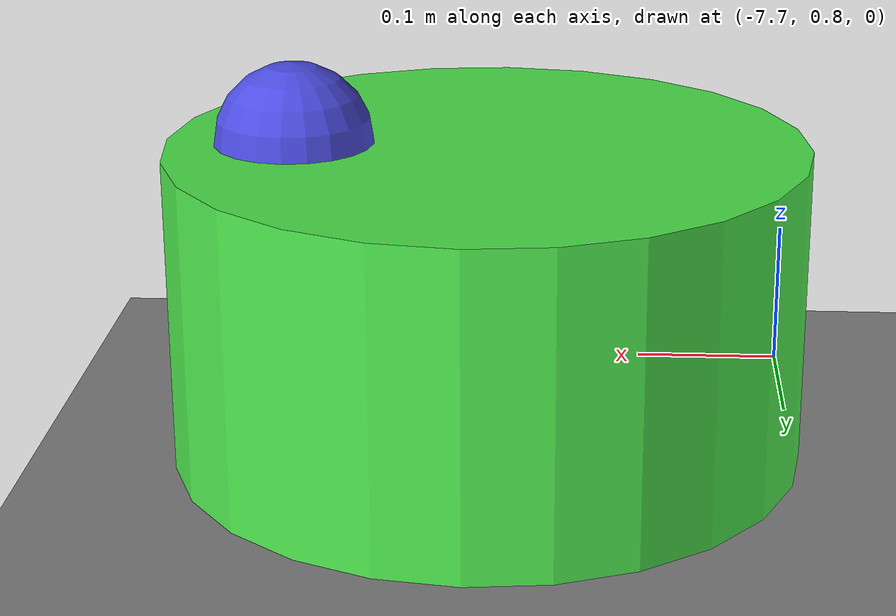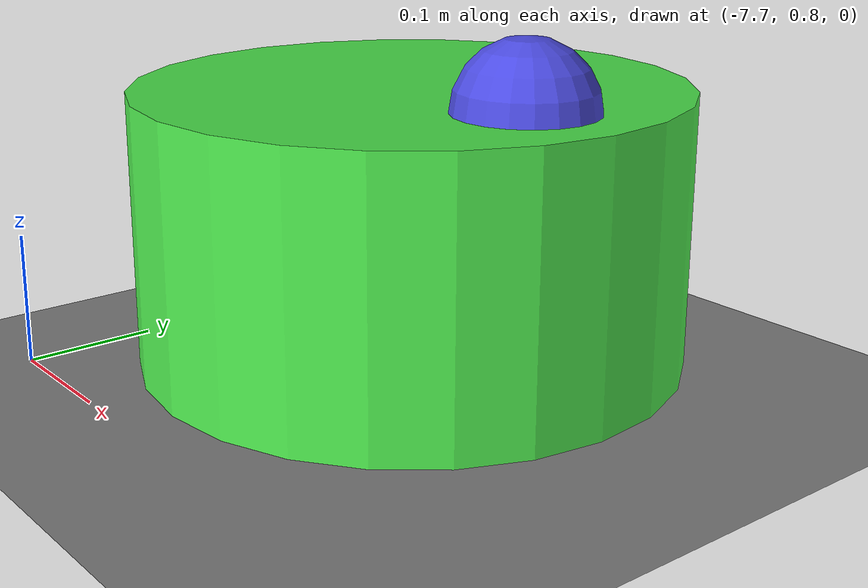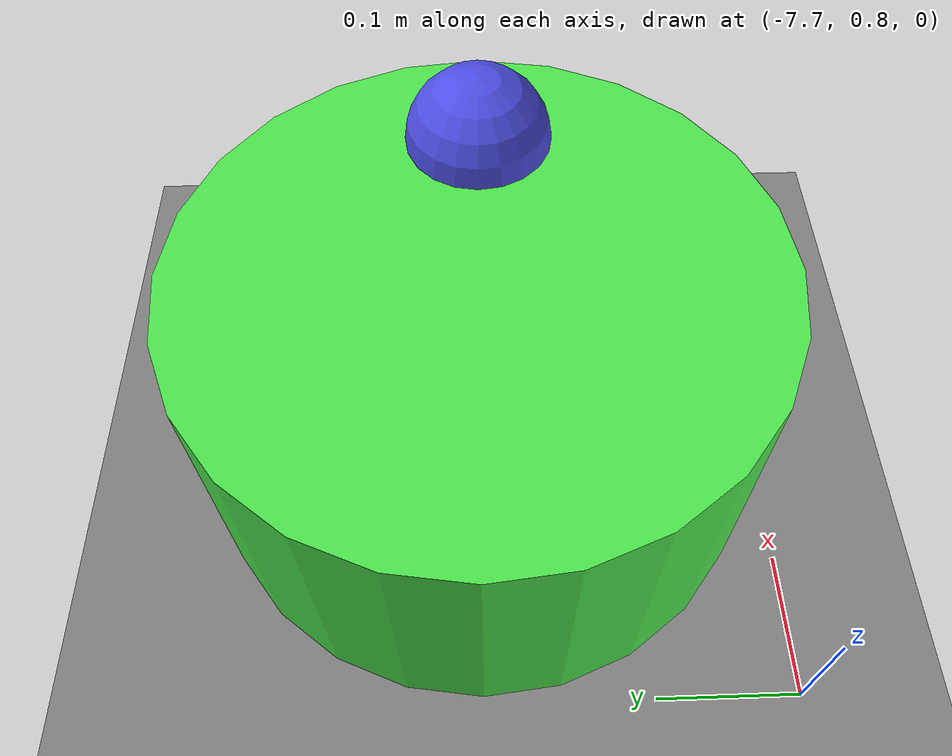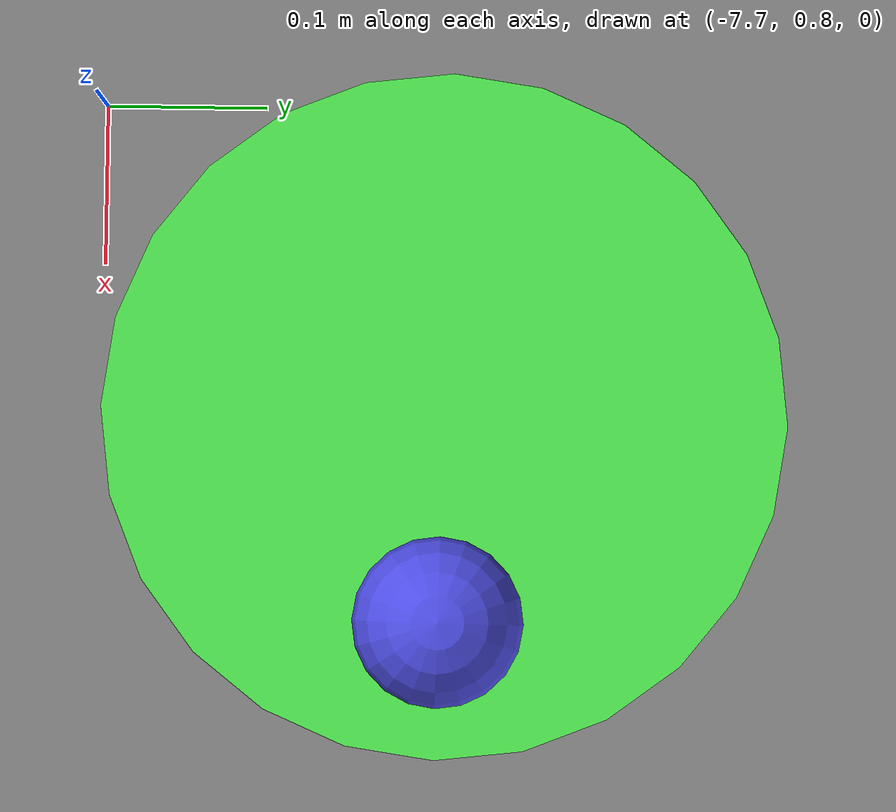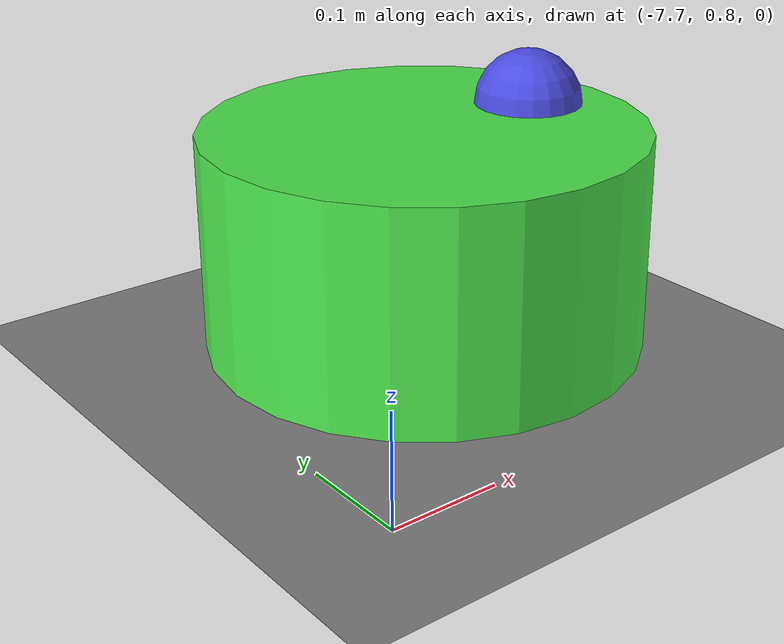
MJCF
<mujoco>
<default>
	<geom friction="0.1 0.005 0.0001"/>
</default>
<visual>
	 <global offwidth="1920" offheight="1080" />
</visual>
<worldbody>
<light name="uplight_0" diffuse="0.4 0.4 0.4" pos="0 0 20" dir="0 0 -1" />
<light name="uplight_1" diffuse="0.4 0.4 0.4" pos="10 10 20" dir="0 0 -1" />
<light name="uplight_2" diffuse="0.4 0.4 0.4" pos="-10 -10 20" dir="0 0 -1" />
<light name="uplight_3" diffuse="0.4 0.4 0.4" pos="10 -10 20" dir="0 0 -1" />
<light name="uplight_4" diffuse="0.4 0.4 0.4" pos="-10 10 20" dir="0 0 -1" />
<geom contype="2" friction="1 0.005 0.0001" pos="0 0 0" euler="0 0 0" type="plane" size="20 20 0.01" rgba="0.5 0.5 0.5 1"/>
<camera mode="fixed" pos="0 0 15" ></camera>

<body name="robot_0" pos="-7.5 1.014331294648699 0" euler="0 0 358.9822155374681">
    <!-- shell radius 17cm, wheel radius 4cm, distance between wheels 28cm -->
    <freejoint name="robot_0"></freejoint>
    <site name="front-flag_0" rgba="0.3 0.3 0.9 1" pos="0.12 0 0.22" type="sphere" size="0.05"></site>

    <body name="front-wheel_0" pos="0.14 0  0.01">
        <joint type="ball" pos="0 0 0"></joint>
        <geom friction="1 0.005 0.0001" contype="2" conaffinity="2" type="sphere" size="0.01"></geom>
    </body>

    <body name="back-wheel_0" pos="-0.14 0  0.01">
        <joint type="ball" pos="0 0 0"></joint>
        <geom friction="1 0.005 0.0001" contype="2" conaffinity="2" type="sphere" size="0.01"></geom>
    </body>

    <body name="left-wheel_0" pos="0 0.14 0.04" euler="90 0 0">
        <joint damping="0.3" name="left-wheel_0" type="hinge" pos="0 0 0" axis="0 0 -1"></joint>
        <geom friction="1 0.005 0.0001" contype="2" conaffinity="2" rgba="0.1 0.1 0.1 1" type="cylinder" size="0.04 0.005"></geom>
    </body>

    <body name="right-wheel_0" pos="0 -0.14 0.04" euler="-90 0  0">
        <joint damping="0.3" name="right-wheel_0" type="hinge" pos="0 0 0" axis="0 0 1"></joint>
        <geom friction="1 0.005 0.0001" contype="2" conaffinity="2" rgba="0.1 0.1 0.1 1" type="cylinder" size="0.04 0.005"></geom>
    </body>
    <body name="shell_0">
      <geom type="cylinder" rgba="0.3 0.9 0.3 1" pos="0 0 0.12" size="0.2 0.1"></geom>
    </body>
</body>

</worldbody>

<actuator>
	<velocity name="left-velocity-servo_0" joint="left-wheel_0" kv="0.05" />
	<velocity name="right-velocity-servo_0" joint="right-wheel_0" kv="0.05" />
</actuator>
</mujoco>
